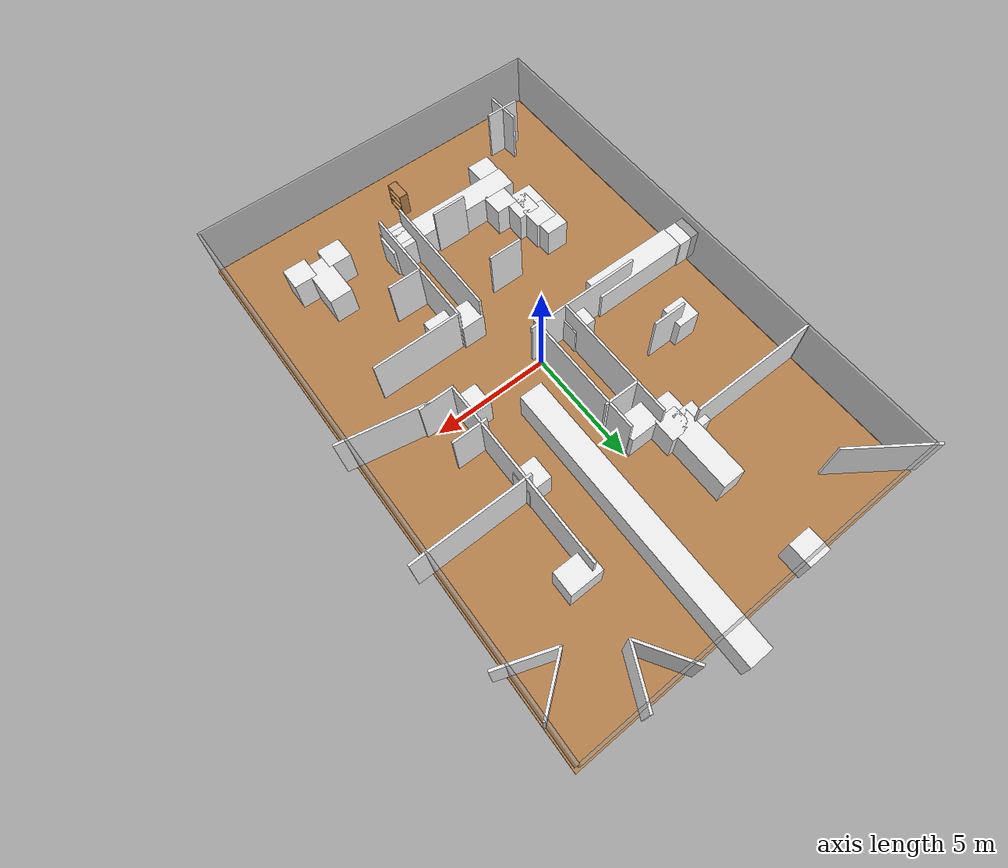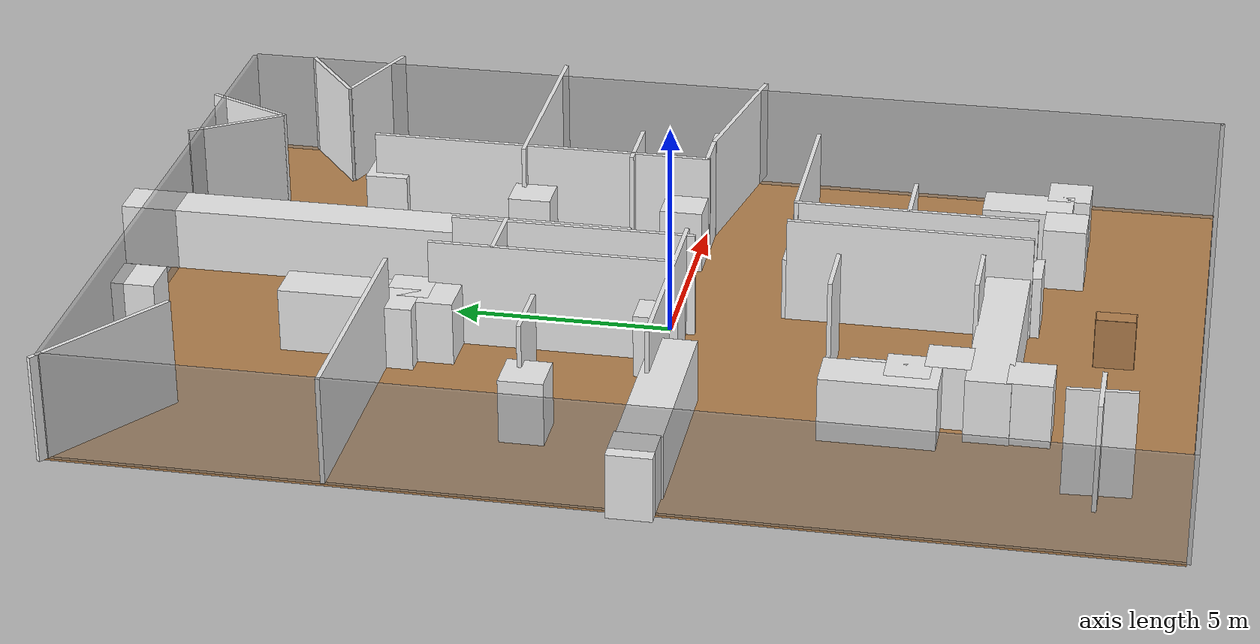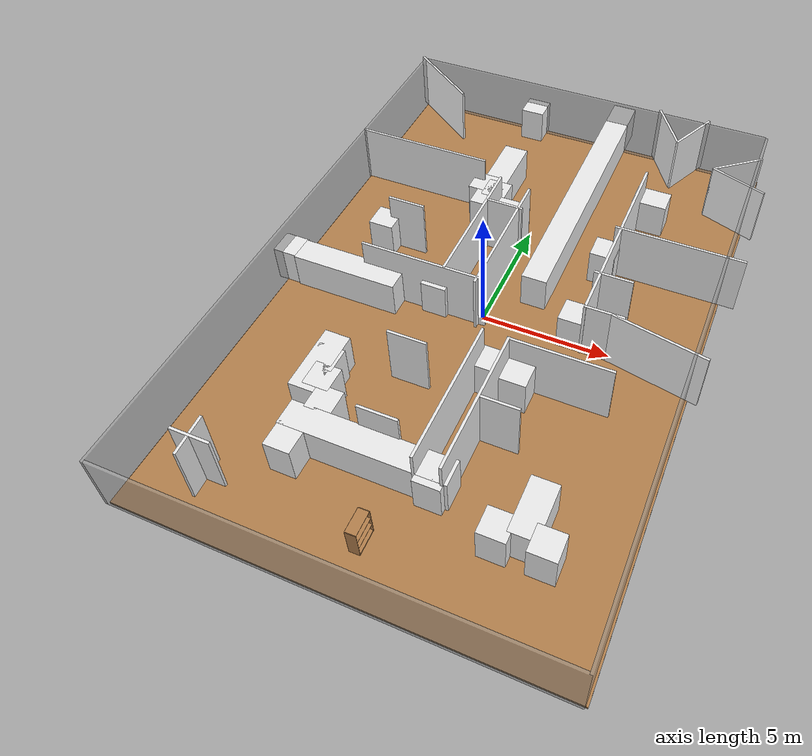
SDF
<sdf version="1.7">
 <world name="default">
  <light name="sun" type="directional">
   <pose>0 0 10 0 -0 0</pose>
   <diffuse>0.8 0.8 0.8 1</diffuse>
   <specular>0.2 0.2 0.2 1</specular>
   <attenuation>
    <range>1000</range>
    <constant>0.9</constant>
    <linear>0.01</linear>
    <quadratic>0.001</quadratic>
   </attenuation>
   <direction>-0.5 0.1 -0.9</direction>
   <spot><inner_angle>0</inner_angle><outer_angle>0</outer_angle><falloff>0</falloff></spot>
  </light>
  <physics name="default_physics" default="0" type="ode">
   <real_time_update_rate>1000</real_time_update_rate>
   <max_step_size>0.001</max_step_size>
   <real_time_factor>1</real_time_factor>
   <ode>
    <solver>
     <type>quick</type>
     <iters>150</iters>
     <precon_iters>0</precon_iters>
     <sor>1.4</sor>
     <use_dynamic_moi_rescaling>1</use_dynamic_moi_rescaling>
    </solver>
    <constraints>
     <cfm>1e-05</cfm>
     <erp>0.2</erp>
     <contact_max_correcting_vel>2000</contact_max_correcting_vel>
     <contact_surface_layer>0.01</contact_surface_layer>
    </constraints>
   </ode>
  </physics>
  <model name="box_1">
   <pose>0.05 -12.05 1.25 0 -0 0</pose>
   <static>1</static>
   <link name="link">
    <collision name="collision"><geometry><box><size>16.1 0.1 2.5</size></box></geometry></collision>
    <visual name="visual">
     <geometry><box><size>16.1 0.1 2.5</size></box></geometry>
     <material>
      <script><name>Gazebo/GreyTransparent</name><uri>file://media/materials/scripts/gazebo.material</uri></script>
     </material>
    </visual>
   </link>
  </model>
  <model name="box_2">
   <pose>8.06174 -0.026302 1.25 0 -0 0</pose>
   <static>1</static>
   <link name="link">
    <collision name="collision"><geometry><box><size>0.1 24.1 2.5</size></box></geometry></collision>
    <visual name="visual">
     <geometry><box><size>0.1 24.1 2.5</size></box></geometry>
     <material>
      <script><name>Gazebo/GreyTransparent</name><uri>file://media/materials/scripts/gazebo.material</uri></script>
     </material>
    </visual>
   </link>
  </model>
  <model name="box_3">
   <pose>-0.05 12.05 1.25 0 -0 0</pose>
   <static>1</static>
   <link name="link">
    <collision name="collision"><geometry><box><size>16.1 0.1 2.5</size></box></geometry></collision>
    <visual name="visual">
     <geometry><box><size>16.1 0.1 2.5</size></box></geometry>
     <material>
      <script><name>Gazebo/GreyTransparent</name><uri>file://media/materials/scripts/gazebo.material</uri></script>
     </material>
    </visual>
   </link>
  </model>
  <model name="box_4">
   <pose>-8.05 -0.05 1.25 0 -0 0</pose>
   <static>1</static>
   <link name="link">
    <collision name="collision"><geometry><box><size>0.1 24.1 2.5</size></box></geometry></collision>
    <visual name="visual">
     <geometry><box><size>0.1 24.1 2.5</size></box></geometry>
     <material>
      <script><name>Gazebo/GreyTransparent</name><uri>file://media/materials/scripts/gazebo.material</uri></script>
     </material>
    </visual>
   </link>
  </model>
  <model name="box_5">
   <pose>0.088242 0.087557 -0.05 0 -0 0</pose>
   <static>1</static>
   <link name="link">
    <collision name="collision"><geometry><box><size>16.2 24.2 0.1</size></box></geometry></collision>
    <visual name="visual">
     <geometry><box><size>16.2 24.2 0.1</size></box></geometry>
     <material>
      <script><name>Gazebo/WoodFloor</name><uri>file://media/materials/scripts/gazebo.material</uri></script>
     </material>
    </visual>
   </link>
  </model>
  <gravity>0 0 -9.8066</gravity>
  <magnetic_field>6e-06 2.3e-05 -4.2e-05</magnetic_field>
  <atmosphere type="adiabatic"/>
  <scene><ambient>0.4 0.4 0.4 1</ambient><background>0.7 0.7 0.7 1</background><shadows>1</shadows></scene>
  <spherical_coordinates>
   <surface_model>EARTH_WGS84</surface_model>
   <latitude_deg>0</latitude_deg>
   <longitude_deg>0</longitude_deg>
   <elevation>0</elevation>
   <heading_deg>0</heading_deg>
  </spherical_coordinates>
  <model name="box_8_clone">
   <pose>6.73576 -0.524414 1.25 0 0 -0.191358</pose>
   <static>1</static>
   <link name="link">
    <collision name="collision"><geometry><box><size>3.67087 0.1 2.5</size></box></geometry></collision>
    <visual name="visual">
     <geometry><box><size>3.67087 0.1 2.5</size></box></geometry>
     <material>
      <script><name>Gazebo/White</name><uri>file://media/materials/scripts/gazebo.material</uri></script>
     </material>
    </visual>
   </link>
  </model>
  <model name="box_9_clone_clone_0">
   <pose>-3.41271 -8.44795 0.75 0 -0 0</pose>
   <static>1</static>
   <link name="link">
    <collision name="collision"><geometry><box><size>1 1 1.5</size></box></geometry></collision>
    <visual name="visual">
     <geometry><box><size>1 1 1.5</size></box></geometry>
     <material>
      <script><name>Gazebo/White</name><uri>file://media/materials/scripts/gazebo.material</uri></script>
     </material>
    </visual>
   </link>
  </model>
  <model name="box_9_clone_clone_1">
   <pose>-0.879146 -7.56359 0.75 0 -0 0</pose>
   <static>1</static>
   <link name="link">
    <collision name="collision"><geometry><box><size>6.13337 1 1.5</size></box></geometry></collision>
    <visual name="visual">
     <geometry><box><size>6.13337 1 1.5</size></box></geometry>
     <material>
      <script><name>Gazebo/White</name><uri>file://media/materials/scripts/gazebo.material</uri></script>
     </material>
    </visual>
   </link>
  </model>
  <model name="box_9_clone_clone_2">
   <pose>-2.96368 -6.64819 0.75 0 -0 0</pose>
   <static>1</static>
   <link name="link">
    <collision name="collision"><geometry><box><size>1 1 1.5</size></box></geometry></collision>
    <visual name="visual">
     <geometry><box><size>1 1 1.5</size></box></geometry>
     <material>
      <script><name>Gazebo/White</name><uri>file://media/materials/scripts/gazebo.material</uri></script>
     </material>
    </visual>
   </link>
  </model>
  <model name="box_9_clone_clone_3">
   <pose>5.68831 -8.62591 0.75 0 -0 0</pose>
   <static>1</static>
   <link name="link">
    <collision name="collision"><geometry><box><size>1 1 1.5</size></box></geometry></collision>
    <visual name="visual">
     <geometry><box><size>1 1 1.5</size></box></geometry>
     <material>
      <script><name>Gazebo/White</name><uri>file://media/materials/scripts/gazebo.material</uri></script>
     </material>
    </visual>
   </link>
  </model>
  <model name="box_9_clone_clone_4">
   <pose>4.92737 -7.69876 0.75 0 -0 0</pose>
   <static>1</static>
   <link name="link">
    <collision name="collision"><geometry><box><size>1 2.09227 1.5</size></box></geometry></collision>
    <visual name="visual">
     <geometry><box><size>1 2.09227 1.5</size></box></geometry>
     <material>
      <script><name>Gazebo/White</name><uri>file://media/materials/scripts/gazebo.material</uri></script>
     </material>
    </visual>
   </link>
  </model>
  <model name="box_9_clone_clone_7">
   <pose>-2.40815 5.82285 0.75 0 -0 0</pose>
   <static>1</static>
   <link name="link">
    <collision name="collision"><geometry><box><size>1 1 1.5</size></box></geometry></collision>
    <visual name="visual">
     <geometry><box><size>1 1 1.5</size></box></geometry>
     <material>
      <script><name>Gazebo/White</name><uri>file://media/materials/scripts/gazebo.material</uri></script>
     </material>
    </visual>
   </link>
  </model>
  <model name="box_9_clone_clone_8">
   <pose>-2 6.49358 0.75 0 -0 0</pose>
   <static>1</static>
   <link name="link">
    <collision name="collision"><geometry><box><size>1 4.01205 1.5</size></box></geometry></collision>
    <visual name="visual">
     <geometry><box><size>1 4.01205 1.5</size></box></geometry>
     <material>
      <script><name>Gazebo/White</name><uri>file://media/materials/scripts/gazebo.material</uri></script>
     </material>
    </visual>
   </link>
  </model>
  <model name="box_8_clone_clone_13_clone_clone_clone_clone_0">
   <pose>3.88443 -2.57138 1.25 0 -0 0</pose>
   <static>1</static>
   <link name="link">
    <collision name="collision"><geometry><box><size>3.86211 0.1 2.5</size></box></geometry></collision>
    <visual name="visual">
     <geometry><box><size>3.86211 0.1 2.5</size></box></geometry>
     <material>
      <script><name>Gazebo/White</name><uri>file://media/materials/scripts/gazebo.material</uri></script>
     </material>
    </visual>
   </link>
  </model>
  <model name="box_8_clone_clone_11_clone">
   <pose>-1.1954 -3.87817 1.25 0 -0 0</pose>
   <static>1</static>
   <link name="link">
    <collision name="collision"><geometry><box><size>1.5 0.1 2.5</size></box></geometry></collision>
    <visual name="visual">
     <geometry><box><size>1.5 0.1 2.5</size></box></geometry>
     <material>
      <script><name>Gazebo/White</name><uri>file://media/materials/scripts/gazebo.material</uri></script>
     </material>
    </visual>
   </link>
  </model>
  <model name="box_8_clone_clone_4_clone_2">
   <pose>-4.30694 2.39293 1.25 0 -0 0</pose>
   <static>1</static>
   <link name="link">
    <collision name="collision"><geometry><box><size>1.5 0.1 2.5</size></box></geometry></collision>
    <visual name="visual">
     <geometry><box><size>1.5 0.1 2.5</size></box></geometry>
     <material>
      <script><name>Gazebo/White</name><uri>file://media/materials/scripts/gazebo.material</uri></script>
     </material>
    </visual>
   </link>
  </model>
  <model name="box_9_clone_clone_7_clone">
   <pose>-5.21616 2.23106 0.75 0 -0 0</pose>
   <static>1</static>
   <link name="link">
    <collision name="collision"><geometry><box><size>1 1 1.5</size></box></geometry></collision>
    <visual name="visual">
     <geometry><box><size>1 1 1.5</size></box></geometry>
     <material>
      <script><name>Gazebo/White</name><uri>file://media/materials/scripts/gazebo.material</uri></script>
     </material>
    </visual>
   </link>
  </model>
  <model name="box_9_clone_clone_7_clone_clone">
   <pose>-7.89766 -0.627489 0.75 0 -0 0</pose>
   <static>1</static>
   <link name="link">
    <collision name="collision"><geometry><box><size>1 1 1.5</size></box></geometry></collision>
    <visual name="visual">
     <geometry><box><size>1 1 1.5</size></box></geometry>
     <material>
      <script><name>Gazebo/White</name><uri>file://media/materials/scripts/gazebo.material</uri></script>
     </material>
    </visual>
   </link>
  </model>
  <model name="box_9_clone_clone_7_clone_clone_3">
   <pose>-3.94528 -5.25172 0.75 0 -0 0</pose>
   <static>1</static>
   <link name="link">
    <collision name="collision"><geometry><box><size>1 2.57973 1.5</size></box></geometry></collision>
    <visual name="visual">
     <geometry><box><size>1 2.57973 1.5</size></box></geometry>
     <material>
      <script><name>Gazebo/White</name><uri>file://media/materials/scripts/gazebo.material</uri></script>
     </material>
    </visual>
   </link>
  </model>
  <model name="box_9_clone_clone_7_clone_clone_4">
   <pose>-3.83027 -5.04481 0.75 0 -0 0</pose>
   <static>1</static>
   <link name="link">
    <collision name="collision"><geometry><box><size>1 1 1.5</size></box></geometry></collision>
    <visual name="visual">
     <geometry><box><size>1 1 1.5</size></box></geometry>
     <material>
      <script><name>Gazebo/White</name><uri>file://media/materials/scripts/gazebo.material</uri></script>
     </material>
    </visual>
   </link>
  </model>
  <model name="box_9_clone_clone_7_clone_clone_5">
   <pose>-3.52537 -5.82067 0.75 0 -0 0</pose>
   <static>1</static>
   <link name="link">
    <collision name="collision"><geometry><box><size>1 1 1.5</size></box></geometry></collision>
    <visual name="visual">
     <geometry><box><size>1 1 1.5</size></box></geometry>
     <material>
      <script><name>Gazebo/White</name><uri>file://media/materials/scripts/gazebo.material</uri></script>
     </material>
    </visual>
   </link>
  </model>
  <model name="box_9_clone_clone_5_clone_2_clone_0">
   <pose>4.37795 7.57531 0.75 0 -0 0</pose>
   <static>1</static>
   <link name="link">
    <collision name="collision"><geometry><box><size>1.40826 1 1.5</size></box></geometry></collision>
    <visual name="visual">
     <geometry><box><size>1.40826 1 1.5</size></box></geometry>
     <material>
      <script><name>Gazebo/White</name><uri>file://media/materials/scripts/gazebo.material</uri></script>
     </material>
    </visual>
   </link>
  </model>
  <model name="box_9_clone_clone_5_clone_2_clone_0_clone_0">
   <pose>4.08001 -8.6431 0.75 0 -0 0</pose>
   <static>1</static>
   <link name="link">
    <collision name="collision"><geometry><box><size>1 1 1.5</size></box></geometry></collision>
    <visual name="visual">
     <geometry><box><size>1 1 1.5</size></box></geometry>
     <material>
      <script><name>Gazebo/White</name><uri>file://media/materials/scripts/gazebo.material</uri></script>
     </material>
    </visual>
   </link>
  </model>
  <model name="box_6_clone_clone_4_clone">
   <pose>3.95719 11.3352 1.25 0 -0 0.571653</pose>
   <static>1</static>
   <link name="link">
    <collision name="collision"><geometry><box><size>0.1 2.35194 2.5</size></box></geometry></collision>
    <visual name="visual">
     <geometry><box><size>0.1 2.35194 2.5</size></box></geometry>
     <material>
      <script><name>Gazebo/White</name><uri>file://media/materials/scripts/gazebo.material</uri></script>
     </material>
    </visual>
   </link>
  </model>
  <model name="box_9_clone_clone_7_clone_clone_clone">
   <pose>-5.32159 -0.673379 0.75 0 -0 0</pose>
   <static>1</static>
   <link name="link">
    <collision name="collision"><geometry><box><size>4.25949 1 1.5</size></box></geometry></collision>
    <visual name="visual">
     <geometry><box><size>4.25949 1 1.5</size></box></geometry>
     <material>
      <script><name>Gazebo/White</name><uri>file://media/materials/scripts/gazebo.material</uri></script>
     </material>
    </visual>
   </link>
  </model>
  <model name="box_8_clone_clone_3_clone">
   <pose>6.25131 4.20674 1.25 0 -0 0</pose>
   <static>1</static>
   <link name="link">
    <collision name="collision"><geometry><box><size>5.04273 0.1 2.5</size></box></geometry></collision>
    <visual name="visual">
     <geometry><box><size>5.04273 0.1 2.5</size></box></geometry>
     <material>
      <script><name>Gazebo/White</name><uri>file://media/materials/scripts/gazebo.material</uri></script>
     </material>
    </visual>
   </link>
  </model>
  <model name="box_9_clone_clone_7_clone_0">
   <pose>1.52592 7.29543 0.75 0 -0 0</pose>
   <static>1</static>
   <link name="link">
    <collision name="collision"><geometry><box><size>1 12.0314 1.5</size></box></geometry></collision>
    <visual name="visual">
     <geometry><box><size>1 12.0314 1.5</size></box></geometry>
     <material>
      <script><name>Gazebo/White</name><uri>file://media/materials/scripts/gazebo.material</uri></script>
     </material>
    </visual>
   </link>
  </model>
  <model name="box_8_clone_clone_3_clone_clone">
   <pose>-5.25901 5.98168 1.25 0 -0 0</pose>
   <static>1</static>
   <link name="link">
    <collision name="collision"><geometry><box><size>5.64962 0.1 2.5</size></box></geometry></collision>
    <visual name="visual">
     <geometry><box><size>5.64962 0.1 2.5</size></box></geometry>
     <material>
      <script><name>Gazebo/White</name><uri>file://media/materials/scripts/gazebo.material</uri></script>
     </material>
    </visual>
   </link>
  </model>
  <model name="box_9_clone_clone_9_clone">
   <pose>-2.30467 11.7929 0.75 0 -0 0</pose>
   <static>1</static>
   <link name="link">
    <collision name="collision"><geometry><box><size>1 1 1.5</size></box></geometry></collision>
    <visual name="visual">
     <geometry><box><size>1 1 1.5</size></box></geometry>
     <material>
      <script><name>Gazebo/White</name><uri>file://media/materials/scripts/gazebo.material</uri></script>
     </material>
    </visual>
   </link>
  </model>
  <model name="box_9_clone_clone_7_clone_1">
   <pose>-1.75575 5.59579 0.75 0 -0 0</pose>
   <static>1</static>
   <link name="link">
    <collision name="collision"><geometry><box><size>1 1 1.5</size></box></geometry></collision>
    <visual name="visual">
     <geometry><box><size>1 1 1.5</size></box></geometry>
     <material>
      <script><name>Gazebo/White</name><uri>file://media/materials/scripts/gazebo.material</uri></script>
     </material>
    </visual>
   </link>
  </model>
  <model name="box_6_clone_clone_3_clone_clone_clone">
   <pose>-1.43846 2.46186 1.25 0 -0 0</pose>
   <static>1</static>
   <link name="link">
    <collision name="collision"><geometry><box><size>0.1 5.60332 2.5</size></box></geometry></collision>
    <visual name="visual">
     <geometry><box><size>0.1 5.60332 2.5</size></box></geometry>
     <material>
      <script><name>Gazebo/White</name><uri>file://media/materials/scripts/gazebo.material</uri></script>
     </material>
    </visual>
   </link>
  </model>
  <model name="box_6_clone_clone_3_clone_clone_clone_clone">
   <pose>3.95757 3.81707 1.25 0 -0 0</pose>
   <static>1</static>
   <link name="link">
    <collision name="collision"><geometry><box><size>0.1 8.11445 2.5</size></box></geometry></collision>
    <visual name="visual">
     <geometry><box><size>0.1 8.11445 2.5</size></box></geometry>
     <material>
      <script><name>Gazebo/White</name><uri>file://media/materials/scripts/gazebo.material</uri></script>
     </material>
    </visual>
   </link>
  </model>
  <model name="box_6_clone_clone_3_clone_clone_clone_clone_0">
   <pose>2.0182 -5.31678 1.25 0 -0 0</pose>
   <static>1</static>
   <link name="link">
    <collision name="collision"><geometry><box><size>0.1 5.60332 2.5</size></box></geometry></collision>
    <visual name="visual">
     <geometry><box><size>0.1 5.60332 2.5</size></box></geometry>
     <material>
      <script><name>Gazebo/White</name><uri>file://media/materials/scripts/gazebo.material</uri></script>
     </material>
    </visual>
   </link>
  </model>
  <model name="box_6_clone_clone_3_clone_clone_clone_clone_0_clone">
   <pose>1.04356 -5.29976 1.25 0 -0 0</pose>
   <static>1</static>
   <link name="link">
    <collision name="collision"><geometry><box><size>0.1 5.60332 2.5</size></box></geometry></collision>
    <visual name="visual">
     <geometry><box><size>0.1 5.60332 2.5</size></box></geometry>
     <material>
      <script><name>Gazebo/White</name><uri>file://media/materials/scripts/gazebo.material</uri></script>
     </material>
    </visual>
   </link>
  </model>
  <model name="box_9_clone_clone_5_clone_2_clone_0_clone_clone">
   <pose>1.51029 -2.90303 0.75 0 -0 0</pose>
   <static>1</static>
   <link name="link">
    <collision name="collision"><geometry><box><size>1 1 1.5</size></box></geometry></collision>
    <visual name="visual">
     <geometry><box><size>1 1 1.5</size></box></geometry>
     <material>
      <script><name>Gazebo/White</name><uri>file://media/materials/scripts/gazebo.material</uri></script>
     </material>
    </visual>
   </link>
  </model>
  <model name="box_8_clone_clone">
   <pose>4.67136 -0.169302 1.25 0 -0 0</pose>
   <static>1</static>
   <link name="link">
    <collision name="collision"><geometry><box><size>1.5 0.1 2.5</size></box></geometry></collision>
    <visual name="visual">
     <geometry><box><size>1.5 0.1 2.5</size></box></geometry>
     <material>
      <script><name>Gazebo/White</name><uri>file://media/materials/scripts/gazebo.material</uri></script>
     </material>
    </visual>
   </link>
  </model>
  <model name="box_9_clone_clone_7_clone_clone_0">
   <pose>-1.82358 -0.068042 0.75 0 -0 0</pose>
   <static>1</static>
   <link name="link">
    <collision name="collision"><geometry><box><size>1 1 1.5</size></box></geometry></collision>
    <visual name="visual">
     <geometry><box><size>1 1 1.5</size></box></geometry>
     <material>
      <script><name>Gazebo/White</name><uri>file://media/materials/scripts/gazebo.material</uri></script>
     </material>
    </visual>
   </link>
  </model>
  <model name="box_9_clone_clone_5_clone_2_clone_0_clone_0_clone">
   <pose>1.56966 -7.808 0.75 0 -0 0</pose>
   <static>1</static>
   <link name="link">
    <collision name="collision"><geometry><box><size>1 1 1.5</size></box></geometry></collision>
    <visual name="visual">
     <geometry><box><size>1 1 1.5</size></box></geometry>
     <material>
      <script><name>Gazebo/White</name><uri>file://media/materials/scripts/gazebo.material</uri></script>
     </material>
    </visual>
   </link>
  </model>
  <model name="box_9_clone_clone_5_clone_2_clone_clone_clone_0_clone">
   <pose>3.53034 3.94247 0.75 0 -0 0</pose>
   <static>1</static>
   <link name="link">
    <collision name="collision"><geometry><box><size>1 1 1.5</size></box></geometry></collision>
    <visual name="visual">
     <geometry><box><size>1 1 1.5</size></box></geometry>
     <material>
      <script><name>Gazebo/White</name><uri>file://media/materials/scripts/gazebo.material</uri></script>
     </material>
    </visual>
   </link>
  </model>
  <model name="box_9_clone_clone_5_clone_2_clone_clone_clone_0_clone_clone">
   <pose>3.50283 0.292409 0.75 0 -0 0</pose>
   <static>1</static>
   <link name="link">
    <collision name="collision"><geometry><box><size>1 1 1.5</size></box></geometry></collision>
    <visual name="visual">
     <geometry><box><size>1 1 1.5</size></box></geometry>
     <material>
      <script><name>Gazebo/White</name><uri>file://media/materials/scripts/gazebo.material</uri></script>
     </material>
    </visual>
   </link>
  </model>
  <model name="box_6_clone_clone_3_clone_clone_clone_clone_1">
   <pose>-0.107646 2.21646 1.25 0 -0 0.001144</pose>
   <static>1</static>
   <link name="link">
    <collision name="collision"><geometry><box><size>0.1 5.60332 2.5</size></box></geometry></collision>
    <visual name="visual">
     <geometry><box><size>0.1 5.60332 2.5</size></box></geometry>
     <material>
      <script><name>Gazebo/White</name><uri>file://media/materials/scripts/gazebo.material</uri></script>
     </material>
    </visual>
   </link>
  </model>
  <model name="box_9_clone_clone_8_clone_0_clone">
   <pose>-0.786916 4.69142 0.75 0 -0 0</pose>
   <static>1</static>
   <link name="link">
    <collision name="collision"><geometry><box><size>1.34488 1 1.5</size></box></geometry></collision>
    <visual name="visual">
     <geometry><box><size>1.34488 1 1.5</size></box></geometry>
     <material>
      <script><name>Gazebo/White</name><uri>file://media/materials/scripts/gazebo.material</uri></script>
     </material>
    </visual>
   </link>
  </model>
  <model name="box_8_clone_clone_3_clone_clone_clone">
   <pose>-2.2916 -0.339317 1.25 0 -0 0</pose>
   <static>1</static>
   <link name="link">
    <collision name="collision"><geometry><box><size>5.03031 0.1 2.5</size></box></geometry></collision>
    <visual name="visual">
     <geometry><box><size>5.03031 0.1 2.5</size></box></geometry>
     <material>
      <script><name>Gazebo/White</name><uri>file://media/materials/scripts/gazebo.material</uri></script>
     </material>
    </visual>
   </link>
  </model>
  <audio><device>default</device></audio>
  <model name="box_6_clone_clone_4_clone_clone">
   <pose>5.05665 11.3213 1.25 0 0 -0.428818</pose>
   <static>1</static>
   <link name="link">
    <collision name="collision"><geometry><box><size>0.1 2.23585 2.5</size></box></geometry></collision>
    <visual name="visual">
     <geometry><box><size>0.1 2.23585 2.5</size></box></geometry>
     <material>
      <script><name>Gazebo/White</name><uri>file://media/materials/scripts/gazebo.material</uri></script>
     </material>
    </visual>
   </link>
  </model>
  <model name="box_9_clone_clone_5_clone_2_clone_0_clone_0_clone_0">
   <pose>2.56687 -3.08492 0.75 0 -0 0</pose>
   <static>1</static>
   <link name="link">
    <collision name="collision"><geometry><box><size>1 1 1.5</size></box></geometry></collision>
    <visual name="visual">
     <geometry><box><size>1 1 1.5</size></box></geometry>
     <material>
      <script><name>Gazebo/White</name><uri>file://media/materials/scripts/gazebo.material</uri></script>
     </material>
    </visual>
   </link>
  </model>
  <model name="box_6_clone_clone_4_clone_clone_0">
   <pose>7.52014 8.76568 1.25 0 -0 1.22098</pose>
   <static>1</static>
   <link name="link">
    <collision name="collision"><geometry><box><size>0.1 2.35194 2.5</size></box></geometry></collision>
    <visual name="visual">
     <geometry><box><size>0.1 2.35194 2.5</size></box></geometry>
     <material>
      <script><name>Gazebo/White</name><uri>file://media/materials/scripts/gazebo.material</uri></script>
     </material>
    </visual>
   </link>
  </model>
  <model name="box_6_clone_clone_4_clone_clone_clone">
   <pose>7.27066 9.84434 1.25 0 0 -0.900768</pose>
   <static>1</static>
   <link name="link">
    <collision name="collision"><geometry><box><size>0.1 2.23585 2.5</size></box></geometry></collision>
    <visual name="visual">
     <geometry><box><size>0.1 2.23585 2.5</size></box></geometry>
     <material>
      <script><name>Gazebo/White</name><uri>file://media/materials/scripts/gazebo.material</uri></script>
     </material>
    </visual>
   </link>
  </model>
  <model name="box_8_clone_clone_11_clone_clone">
   <pose>2.72179 -5.17165 1.25 0 -0 0</pose>
   <static>1</static>
   <link name="link">
    <collision name="collision"><geometry><box><size>1.5 0.1 2.5</size></box></geometry></collision>
    <visual name="visual">
     <geometry><box><size>1.5 0.1 2.5</size></box></geometry>
     <material>
      <script><name>Gazebo/White</name><uri>file://media/materials/scripts/gazebo.material</uri></script>
     </material>
    </visual>
   </link>
  </model>
  <model name="box_8_clone_clone_11_clone_clone_0">
   <pose>-5.67141 -10.0374 1.25 0 -0 1.62008</pose>
   <static>1</static>
   <link name="link">
    <collision name="collision"><geometry><box><size>1.5 0.1 2.5</size></box></geometry></collision>
    <visual name="visual">
     <geometry><box><size>1.5 0.1 2.5</size></box></geometry>
     <material>
      <script><name>Gazebo/White</name><uri>file://media/materials/scripts/gazebo.material</uri></script>
     </material>
    </visual>
   </link>
  </model>
  <model name="box_8_clone_clone_11_clone_clone_1">
   <pose>-5.63429 -10.0383 1.25 0 -0 0</pose>
   <static>1</static>
   <link name="link">
    <collision name="collision"><geometry><box><size>1.5 0.1 2.5</size></box></geometry></collision>
    <visual name="visual">
     <geometry><box><size>1.5 0.1 2.5</size></box></geometry>
     <material>
      <script><name>Gazebo/White</name><uri>file://media/materials/scripts/gazebo.material</uri></script>
     </material>
    </visual>
   </link>
  </model>
  <model name="box_8_clone_clone_11_clone_clone_1_clone">
   <pose>-0.668626 -7.0443 1.25 0 -0 0</pose>
   <static>1</static>
   <link name="link">
    <collision name="collision"><geometry><box><size>1.5 0.1 2.5</size></box></geometry></collision>
    <visual name="visual">
     <geometry><box><size>1.5 0.1 2.5</size></box></geometry>
     <material>
      <script><name>Gazebo/White</name><uri>file://media/materials/scripts/gazebo.material</uri></script>
     </material>
    </visual>
   </link>
  </model>
  <model name="box_8_clone_clone_0">
   <pose>-6.74142 11.1297 1.25 0 0 -0.612143</pose>
   <static>1</static>
   <link name="link">
    <collision name="collision"><geometry><box><size>3.67088 0.1 2.5</size></box></geometry></collision>
    <visual name="visual">
     <geometry><box><size>3.67088 0.1 2.5</size></box></geometry>
     <material>
      <script><name>Gazebo/White</name><uri>file://media/materials/scripts/gazebo.material</uri></script>
     </material>
    </visual>
   </link>
  </model>
  <model name="box_8_clone_clone_4_clone_2_clone">
   <pose>-0.695186 3.78615 1.25 0 -0 0</pose>
   <static>1</static>
   <link name="link">
    <collision name="collision"><geometry><box><size>1.5 0.1 2.5</size></box></geometry></collision>
    <visual name="visual">
     <geometry><box><size>1.5 0.1 2.5</size></box></geometry>
     <material>
      <script><name>Gazebo/White</name><uri>file://media/materials/scripts/gazebo.material</uri></script>
     </material>
    </visual>
   </link>
  </model>
  <model name="box_8_clone_clone_4_clone_2_clone_clone">
   <pose>4.46476 1.59903 1.25 0 -0 0</pose>
   <static>1</static>
   <link name="link">
    <collision name="collision"><geometry><box><size>1.5 0.1 2.5</size></box></geometry></collision>
    <visual name="visual">
     <geometry><box><size>1.5 0.1 2.5</size></box></geometry>
     <material>
      <script><name>Gazebo/White</name><uri>file://media/materials/scripts/gazebo.material</uri></script>
     </material>
    </visual>
   </link>
  </model>
  <model name="bookshelf">
   <static>1</static>
   <link name="link">
    <inertial><mass>1</mass></inertial>
    <collision name="back">
     <pose>0 0.005 0.6 0 -0 0</pose>
     <geometry><box><size>0.9 0.01 1.2</size></box></geometry>
    </collision>
    <visual name="visual1">
     <pose>0 0.005 0.6 0 -0 0</pose>
     <geometry><box><size>0.9 0.01 1.2</size></box></geometry>
     <material>
      <script><uri>file://media/materials/scripts/gazebo.material</uri><name>Gazebo/Wood</name></script>
     </material>
    </visual>
    <collision name="left_side">
     <pose>0.45 -0.195 0.6 0 -0 0</pose>
     <geometry><box><size>0.02 0.4 1.2</size></box></geometry>
    </collision>
    <visual name="visual2">
     <pose>0.45 -0.195 0.6 0 -0 0</pose>
     <geometry><box><size>0.02 0.4 1.2</size></box></geometry>
     <material>
      <script><uri>file://media/materials/scripts/gazebo.material</uri><name>Gazebo/Wood</name></script>
     </material>
    </visual>
    <collision name="right_side">
     <pose>-0.45 -0.195 0.6 0 -0 0</pose>
     <geometry><box><size>0.02 0.4 1.2</size></box></geometry>
    </collision>
    <visual name="visual3">
     <pose>-0.45 -0.195 0.6 0 -0 0</pose>
     <geometry><box><size>0.02 0.4 1.2</size></box></geometry>
     <material>
      <script><uri>file://media/materials/scripts/gazebo.material</uri><name>Gazebo/Wood</name></script>
     </material>
    </visual>
    <collision name="bottom">
     <pose>0 -0.195 0.03 0 -0 0</pose>
     <geometry><box><size>0.88 0.4 0.06</size></box></geometry>
    </collision>
    <visual name="visual4">
     <pose>0 -0.195 0.03 0 -0 0</pose>
     <geometry><box><size>0.88 0.4 0.06</size></box></geometry>
     <material>
      <script><uri>file://media/materials/scripts/gazebo.material</uri><name>Gazebo/Wood</name></script>
     </material>
    </visual>
    <collision name="top">
     <pose>0 -0.195 1.19 0 -0 0</pose>
     <geometry><box><size>0.88 0.4 0.02</size></box></geometry>
    </collision>
    <visual name="visual5">
     <pose>0 -0.195 1.19 0 -0 0</pose>
     <geometry><box><size>0.88 0.4 0.02</size></box></geometry>
     <material>
      <script><uri>file://media/materials/scripts/gazebo.material</uri><name>Gazebo/Wood</name></script>
     </material>
    </visual>
    <collision name="low_shelf">
     <pose>0 -0.195 0.43 0 -0 0</pose>
     <geometry><box><size>0.88 0.4 0.02</size></box></geometry>
    </collision>
    <visual name="visual6">
     <pose>0 -0.195 0.43 0 -0 0</pose>
     <geometry><box><size>0.88 0.4 0.02</size></box></geometry>
     <material>
      <script><uri>file://media/materials/scripts/gazebo.material</uri><name>Gazebo/Wood</name></script>
     </material>
    </visual>
    <collision name="high_shelf">
     <pose>0 -0.195 0.8 0 -0 0</pose>
     <geometry><box><size>0.88 0.4 0.02</size></box></geometry>
    </collision>
    <visual name="visual7">
     <pose>0 -0.195 0.8 0 -0 0</pose>
     <geometry><box><size>0.88 0.4 0.02</size></box></geometry>
     <material>
      <script><uri>file://media/materials/scripts/gazebo.material</uri><name>Gazebo/Wood</name></script>
     </material>
    </visual>
   </link>
   <pose>-0.076486 -10.0605 0 -0.013581 0.001562 1.58399</pose>
  </model>
 </world>
</sdf>
